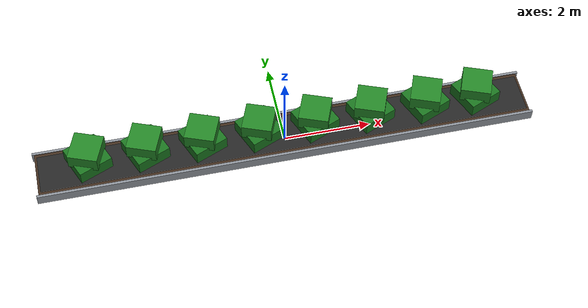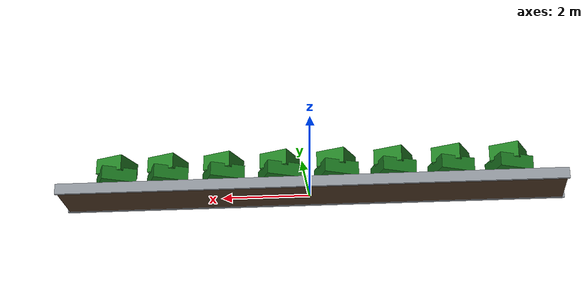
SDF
<?xml version="1.0" ?>
<sdf version="1.9">
  <model name="capsicum_bed">
    <static>true</static>
    <link name="bed_link">
      <pose>0 0 0 0 0 0</pose>
      <!-- Raised Bed Soil & Structure -->
      <visual name="soil_surface">
        <pose>0 0 0.12 0 0 0</pose>
        <geometry><box><size>11.4 1.1 0.22</size></box></geometry>
        <material><ambient>0.2 0.14 0.09 1</ambient><diffuse>0.26 0.18 0.12 1</diffuse></material>
      </visual>
      <visual name="mulch_strip">
        <pose>0 0 0.235 0 0 0</pose>
        <geometry><box><size>11.3 0.95 0.01</size></box></geometry>
        <material><ambient>0.1 0.1 0.1 1</ambient><diffuse>0.15 0.15 0.15 1</diffuse></material>
      </visual>
      <visual name="border_left">
        <pose>0 -0.58 0.125 0 0 0</pose>
        <geometry><box><size>11.5 0.06 0.25</size></box></geometry>
        <material><ambient>0.45 0.47 0.5 1</ambient><diffuse>0.55 0.57 0.6 1</diffuse></material>
      </visual>
      <visual name="border_right">
        <pose>0 0.58 0.125 0 0 0</pose>
        <geometry><box><size>11.5 0.06 0.25</size></box></geometry>
        <material><ambient>0.45 0.47 0.5 1</ambient><diffuse>0.55 0.57 0.6 1</diffuse></material>
      </visual>
      <visual name="canopy_low_1"><pose>-4.5 0 0.55 0 0 0.4</pose><geometry><box><size>0.8 0.8 0.32</size></box></geometry><material><ambient>0.06 0.35 0.08 1</ambient><diffuse>0.1 0.45 0.12 1</diffuse></material></visual>
      <visual name="canopy_top_1"><pose>-4.5 0 0.82 0 0 1.2</pose><geometry><box><size>0.68 0.68 0.36</size></box></geometry><material><ambient>0.08 0.4 0.1 1</ambient><diffuse>0.14 0.52 0.15 1</diffuse></material></visual>
      <visual name="pep_red_1"><pose>-4.34 0.14 0.9 0 0 0.3</pose><geometry><box><size>0.12 0.12 0.14</size></box></geometry><material><ambient>0.9 0.05 0.05 1</ambient><diffuse>0.98 0.08 0.08 1</diffuse></material></visual>
      <visual name="pep_yel_1"><pose>-4.66 -0.15 0.88 0 0 0.8</pose><geometry><box><size>0.12 0.12 0.14</size></box></geometry><material><ambient>0.95 0.8 0.05 1</ambient><diffuse>1.0 0.9 0.1 1</diffuse></material></visual>
      <visual name="pep_org_1"><pose>-4.68 0.16 0.7 0 0 0.4</pose><geometry><box><size>0.11 0.11 0.13</size></box></geometry><material><ambient>0.92 0.48 0.05 1</ambient><diffuse>0.98 0.58 0.08 1</diffuse></material></visual>
      <visual name="canopy_low_2"><pose>-3.2 0 0.55 0 0 0.4</pose><geometry><box><size>0.8 0.8 0.32</size></box></geometry><material><ambient>0.06 0.35 0.08 1</ambient><diffuse>0.1 0.45 0.12 1</diffuse></material></visual>
      <visual name="canopy_top_2"><pose>-3.2 0 0.82 0 0 1.2</pose><geometry><box><size>0.68 0.68 0.36</size></box></geometry><material><ambient>0.08 0.4 0.1 1</ambient><diffuse>0.14 0.52 0.15 1</diffuse></material></visual>
      <visual name="pep_red_2"><pose>-3.04 0.14 0.9 0 0 0.3</pose><geometry><box><size>0.12 0.12 0.14</size></box></geometry><material><ambient>0.9 0.05 0.05 1</ambient><diffuse>0.98 0.08 0.08 1</diffuse></material></visual>
      <visual name="pep_yel_2"><pose>-3.3600000000000003 -0.15 0.88 0 0 0.8</pose><geometry><box><size>0.12 0.12 0.14</size></box></geometry><material><ambient>0.95 0.8 0.05 1</ambient><diffuse>1.0 0.9 0.1 1</diffuse></material></visual>
      <visual name="pep_org_2"><pose>-3.3800000000000003 0.16 0.7 0 0 0.4</pose><geometry><box><size>0.11 0.11 0.13</size></box></geometry><material><ambient>0.92 0.48 0.05 1</ambient><diffuse>0.98 0.58 0.08 1</diffuse></material></visual>
      <visual name="canopy_low_3"><pose>-1.9 0 0.55 0 0 0.4</pose><geometry><box><size>0.8 0.8 0.32</size></box></geometry><material><ambient>0.06 0.35 0.08 1</ambient><diffuse>0.1 0.45 0.12 1</diffuse></material></visual>
      <visual name="canopy_top_3"><pose>-1.9 0 0.82 0 0 1.2</pose><geometry><box><size>0.68 0.68 0.36</size></box></geometry><material><ambient>0.08 0.4 0.1 1</ambient><diffuse>0.14 0.52 0.15 1</diffuse></material></visual>
      <visual name="pep_red_3"><pose>-1.74 0.14 0.9 0 0 0.3</pose><geometry><box><size>0.12 0.12 0.14</size></box></geometry><material><ambient>0.9 0.05 0.05 1</ambient><diffuse>0.98 0.08 0.08 1</diffuse></material></visual>
      <visual name="pep_yel_3"><pose>-2.06 -0.15 0.88 0 0 0.8</pose><geometry><box><size>0.12 0.12 0.14</size></box></geometry><material><ambient>0.95 0.8 0.05 1</ambient><diffuse>1.0 0.9 0.1 1</diffuse></material></visual>
      <visual name="pep_org_3"><pose>-2.08 0.16 0.7 0 0 0.4</pose><geometry><box><size>0.11 0.11 0.13</size></box></geometry><material><ambient>0.92 0.48 0.05 1</ambient><diffuse>0.98 0.58 0.08 1</diffuse></material></visual>
      <visual name="canopy_low_4"><pose>-0.6 0 0.55 0 0 0.4</pose><geometry><box><size>0.8 0.8 0.32</size></box></geometry><material><ambient>0.06 0.35 0.08 1</ambient><diffuse>0.1 0.45 0.12 1</diffuse></material></visual>
      <visual name="canopy_top_4"><pose>-0.6 0 0.82 0 0 1.2</pose><geometry><box><size>0.68 0.68 0.36</size></box></geometry><material><ambient>0.08 0.4 0.1 1</ambient><diffuse>0.14 0.52 0.15 1</diffuse></material></visual>
      <visual name="pep_red_4"><pose>-0.43999999999999995 0.14 0.9 0 0 0.3</pose><geometry><box><size>0.12 0.12 0.14</size></box></geometry><material><ambient>0.9 0.05 0.05 1</ambient><diffuse>0.98 0.08 0.08 1</diffuse></material></visual>
      <visual name="pep_yel_4"><pose>-0.76 -0.15 0.88 0 0 0.8</pose><geometry><box><size>0.12 0.12 0.14</size></box></geometry><material><ambient>0.95 0.8 0.05 1</ambient><diffuse>1.0 0.9 0.1 1</diffuse></material></visual>
      <visual name="pep_org_4"><pose>-0.78 0.16 0.7 0 0 0.4</pose><geometry><box><size>0.11 0.11 0.13</size></box></geometry><material><ambient>0.92 0.48 0.05 1</ambient><diffuse>0.98 0.58 0.08 1</diffuse></material></visual>
      <visual name="canopy_low_5"><pose>0.7 0 0.55 0 0 0.4</pose><geometry><box><size>0.8 0.8 0.32</size></box></geometry><material><ambient>0.06 0.35 0.08 1</ambient><diffuse>0.1 0.45 0.12 1</diffuse></material></visual>
      <visual name="canopy_top_5"><pose>0.7 0 0.82 0 0 1.2</pose><geometry><box><size>0.68 0.68 0.36</size></box></geometry><material><ambient>0.08 0.4 0.1 1</ambient><diffuse>0.14 0.52 0.15 1</diffuse></material></visual>
      <visual name="pep_red_5"><pose>0.86 0.14 0.9 0 0 0.3</pose><geometry><box><size>0.12 0.12 0.14</size></box></geometry><material><ambient>0.9 0.05 0.05 1</ambient><diffuse>0.98 0.08 0.08 1</diffuse></material></visual>
      <visual name="pep_yel_5"><pose>0.5399999999999999 -0.15 0.88 0 0 0.8</pose><geometry><box><size>0.12 0.12 0.14</size></box></geometry><material><ambient>0.95 0.8 0.05 1</ambient><diffuse>1.0 0.9 0.1 1</diffuse></material></visual>
      <visual name="pep_org_5"><pose>0.52 0.16 0.7 0 0 0.4</pose><geometry><box><size>0.11 0.11 0.13</size></box></geometry><material><ambient>0.92 0.48 0.05 1</ambient><diffuse>0.98 0.58 0.08 1</diffuse></material></visual>
      <visual name="canopy_low_6"><pose>2.0 0 0.55 0 0 0.4</pose><geometry><box><size>0.8 0.8 0.32</size></box></geometry><material><ambient>0.06 0.35 0.08 1</ambient><diffuse>0.1 0.45 0.12 1</diffuse></material></visual>
      <visual name="canopy_top_6"><pose>2.0 0 0.82 0 0 1.2</pose><geometry><box><size>0.68 0.68 0.36</size></box></geometry><material><ambient>0.08 0.4 0.1 1</ambient><diffuse>0.14 0.52 0.15 1</diffuse></material></visual>
      <visual name="pep_red_6"><pose>2.16 0.14 0.9 0 0 0.3</pose><geometry><box><size>0.12 0.12 0.14</size></box></geometry><material><ambient>0.9 0.05 0.05 1</ambient><diffuse>0.98 0.08 0.08 1</diffuse></material></visual>
      <visual name="pep_yel_6"><pose>1.84 -0.15 0.88 0 0 0.8</pose><geometry><box><size>0.12 0.12 0.14</size></box></geometry><material><ambient>0.95 0.8 0.05 1</ambient><diffuse>1.0 0.9 0.1 1</diffuse></material></visual>
      <visual name="pep_org_6"><pose>1.82 0.16 0.7 0 0 0.4</pose><geometry><box><size>0.11 0.11 0.13</size></box></geometry><material><ambient>0.92 0.48 0.05 1</ambient><diffuse>0.98 0.58 0.08 1</diffuse></material></visual>
      <visual name="canopy_low_7"><pose>3.3 0 0.55 0 0 0.4</pose><geometry><box><size>0.8 0.8 0.32</size></box></geometry><material><ambient>0.06 0.35 0.08 1</ambient><diffuse>0.1 0.45 0.12 1</diffuse></material></visual>
      <visual name="canopy_top_7"><pose>3.3 0 0.82 0 0 1.2</pose><geometry><box><size>0.68 0.68 0.36</size></box></geometry><material><ambient>0.08 0.4 0.1 1</ambient><diffuse>0.14 0.52 0.15 1</diffuse></material></visual>
      <visual name="pep_red_7"><pose>3.46 0.14 0.9 0 0 0.3</pose><geometry><box><size>0.12 0.12 0.14</size></box></geometry><material><ambient>0.9 0.05 0.05 1</ambient><diffuse>0.98 0.08 0.08 1</diffuse></material></visual>
      <visual name="pep_yel_7"><pose>3.1399999999999997 -0.15 0.88 0 0 0.8</pose><geometry><box><size>0.12 0.12 0.14</size></box></geometry><material><ambient>0.95 0.8 0.05 1</ambient><diffuse>1.0 0.9 0.1 1</diffuse></material></visual>
      <visual name="pep_org_7"><pose>3.1199999999999997 0.16 0.7 0 0 0.4</pose><geometry><box><size>0.11 0.11 0.13</size></box></geometry><material><ambient>0.92 0.48 0.05 1</ambient><diffuse>0.98 0.58 0.08 1</diffuse></material></visual>
      <visual name="canopy_low_8"><pose>4.5 0 0.55 0 0 0.4</pose><geometry><box><size>0.8 0.8 0.32</size></box></geometry><material><ambient>0.06 0.35 0.08 1</ambient><diffuse>0.1 0.45 0.12 1</diffuse></material></visual>
      <visual name="canopy_top_8"><pose>4.5 0 0.82 0 0 1.2</pose><geometry><box><size>0.68 0.68 0.36</size></box></geometry><material><ambient>0.08 0.4 0.1 1</ambient><diffuse>0.14 0.52 0.15 1</diffuse></material></visual>
      <visual name="pep_red_8"><pose>4.66 0.14 0.9 0 0 0.3</pose><geometry><box><size>0.12 0.12 0.14</size></box></geometry><material><ambient>0.9 0.05 0.05 1</ambient><diffuse>0.98 0.08 0.08 1</diffuse></material></visual>
      <visual name="pep_yel_8"><pose>4.34 -0.15 0.88 0 0 0.8</pose><geometry><box><size>0.12 0.12 0.14</size></box></geometry><material><ambient>0.95 0.8 0.05 1</ambient><diffuse>1.0 0.9 0.1 1</diffuse></material></visual>
      <visual name="pep_org_8"><pose>4.32 0.16 0.7 0 0 0.4</pose><geometry><box><size>0.11 0.11 0.13</size></box></geometry><material><ambient>0.92 0.48 0.05 1</ambient><diffuse>0.98 0.58 0.08 1</diffuse></material></visual>
      <!-- Single Bed Physics Collision -->
      <collision name="bed_col">
        <pose>0 0 0.5 0 0 0</pose>
        <geometry><box><size>11.5 1.2 1.0</size></box></geometry>
      </collision>
    </link>
  </model>
</sdf>
